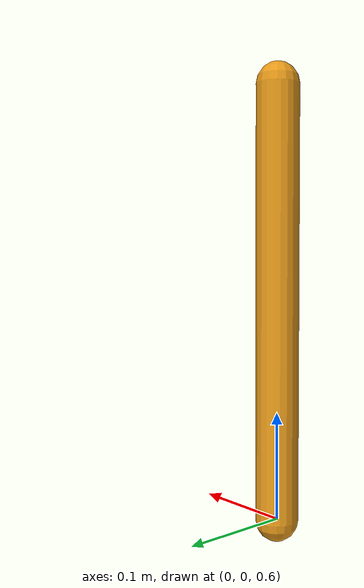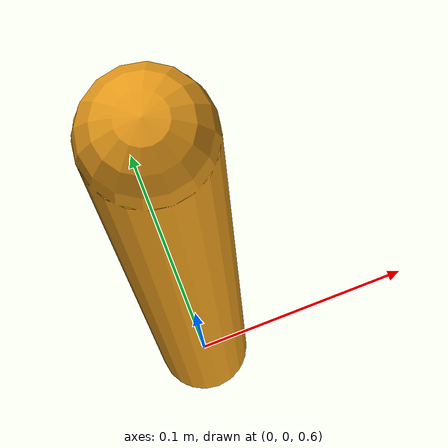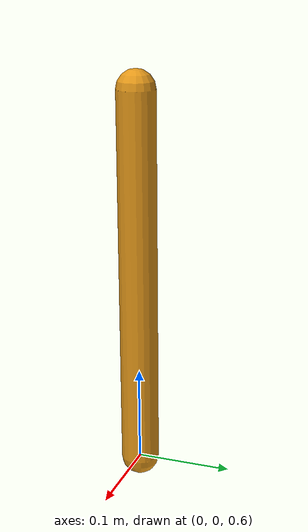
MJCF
<mujoco>
  <worldbody>
    <body pos="0 0 1">
      <joint name="hinge" type="hinge" axis="0 1 0"/>
      <geom type="capsule" fromto="0 0 0 0 0 -0.4" size="0.02" rgba="0.9 0.6 0.1 1"/>
    </body>
  </worldbody>

  <actuator>
    <!-- position 伺服：內建 PD，ctrl 直接是目標角度 -->
    <position name="servo" joint="hinge" kp="10" ctrllimited="true" ctrlrange="-1.6 1.6"/>
  </actuator>
</mujoco>
